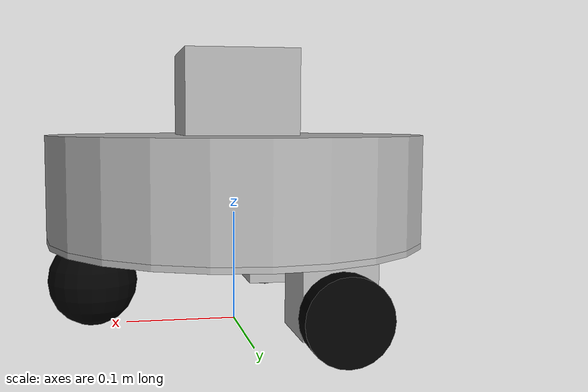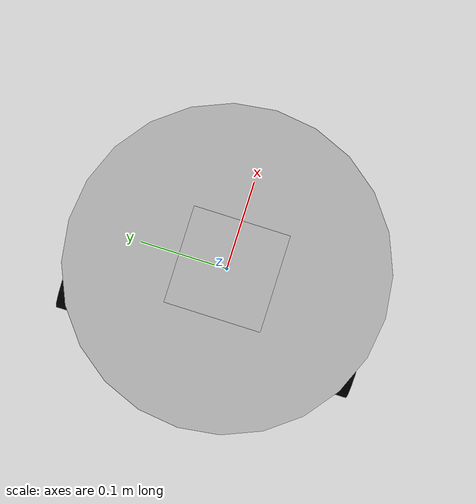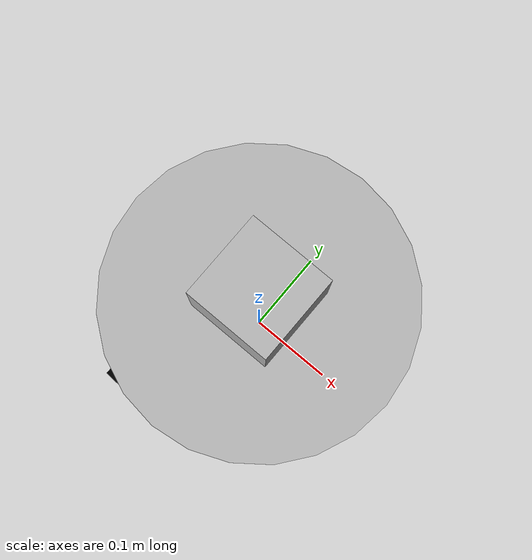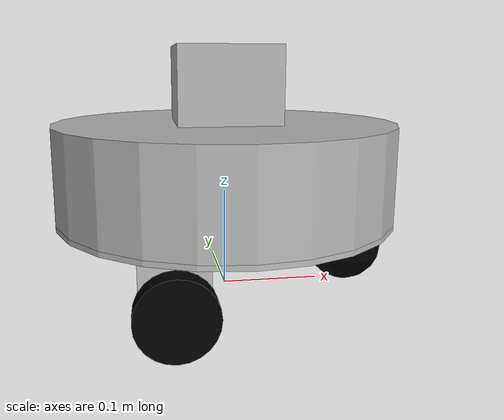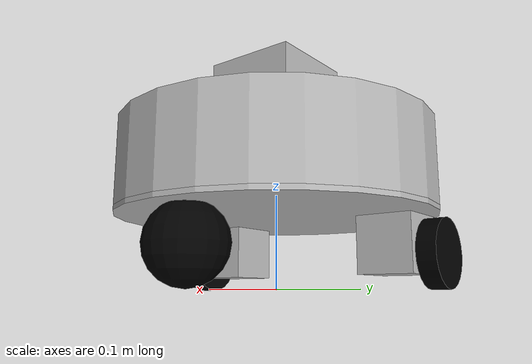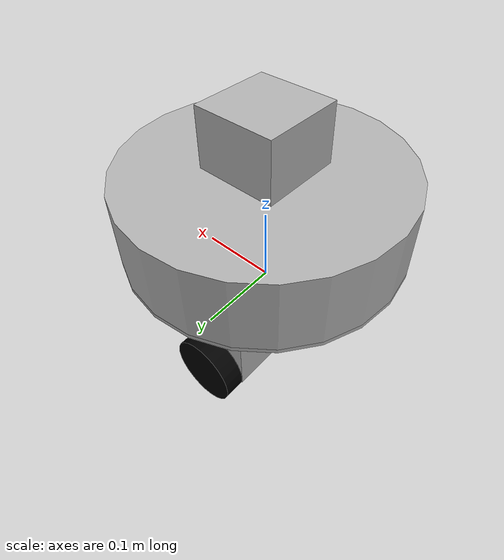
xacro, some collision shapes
<?xml version="1.0"?>
<robot name="model1" xmlns:xacro="http://www.ros.org/wiki/xacro">
 <xacro:include filename="$(find robot_description)/urdf/robot_gazebo.xacro"/>

<link name="base_link">
        <visual>
          <geometry>
            <cylinder length="0.005" radius="0.17"/>
          </geometry>
         <material name="light_grey">
           <color rgba="0.7 0.7 0.7 1.0"/>
         </material>
            <origin rpy="0 0 0" xyz="0 0 0.0775"/>
        </visual>
       <collision>
      <geometry>
       <cylinder length="0.005" radius="0.17"/>
      </geometry>
      <origin  rpy="0 0 0" xyz="0 0 0.0775" />
      </collision>
      <inertial>
       <mass value="2.4"/> <!-- 2.4/2.6 kg for small/big battery pack -->
        <inertia ixx="0.019995" ixy="0.0" ixz="0.0"
                 iyy="0.019995" iyz="0.0"
                 izz="0.03675" />
      </inertial>
     </link>

    <link name="right_mount">
       <visual>
         <geometry>
           <box size="0.06 0.06 0.06"/>
         </geometry>
         <material name="light_grey">
           <color rgba="0.7 0.7 0.7 1.0"/>
         </material>
         <origin rpy="0 0 0" xyz="0.0 0.0 0.0"/>
       </visual>
      <collision>
      <geometry>
      <box size="0.06 0.06 0.06"/>
      </geometry>
      <origin  rpy="0 0 0" xyz="0.0 0.0 0.0" />
      </collision>
      <inertial>
        <mass value="0.010" />
        <origin xyz="0 0 0" />
        <inertia ixx="0.001" ixy="0.0" ixz="0.0"
                 iyy="0.001" iyz="0.0"
                 izz="0.001" />
      </inertial>

     </link>

     <joint name="base_to_right_mount" type="fixed">
       <parent link="base_link"/>
       <child link="right_mount"/>
       <origin xyz="-0.06 -0.110 0.0450"/>
   </joint>

  <link name="left_mount">
       <visual>
         <geometry>
           <box size="0.06 0.06 0.06"/>
         </geometry>
         <material name="light_grey">
           <color rgba="0.7 0.7 0.7 1.0"/>
         </material>
         <origin rpy="0 0 0" xyz="0.0 0.0 0.0"/>
       </visual>
     <collision>
      <geometry>
      <box size="0.06 0.06 0.06"/>
      </geometry>
      <origin  rpy="0 0 0" xyz="0.0 0.0 0.0" />
      </collision>
      <inertial>
        <mass value="0.01" />
        <origin xyz="0 0 0" />
        <inertia ixx="0.001" ixy="0.0" ixz="0.0"
                 iyy="0.001" iyz="0.0"
                 izz="0.001" />
      </inertial>
     </link>

     <joint name="base_to_left_mount" type="fixed">
       <parent link="base_link"/>
       <child link="left_mount"/>
       <origin xyz="-0.06 0.110 0.0450"/>
   </joint>

 <link name="right_wheel">
       <visual>
         <geometry>
           <cylinder length="0.02" radius="0.035"/>
         </geometry>
         <material name="black">
           <color rgba="0 0 0 1.0"/>
         </material>
         <origin rpy="0 1.5707 1.5707 " xyz="0.0 0.0 0.0"/>
       </visual>
 <collision>
      <geometry>
      <cylinder length="0.02" radius="0.035" />
      </geometry>
      <origin  rpy="0 1.5707 1.5707" xyz="0.0 0.0 0.0" />
      </collision>
      <inertial>
        <mass value="0.010" />
        <origin xyz="0 0 0" />
        <inertia ixx="0.001" ixy="0.0" ixz="0.0"
                 iyy="0.001" iyz="0.0"
                 izz="0.001" />
      </inertial>
       </link>

     <joint name="base_to_right_wheel" type="continuous">
       <parent link="right_mount"/>
       <child link="right_wheel"/>
       <axis xyz="0 1 0"/>
       <origin rpy="0 0 0" xyz="0.0 -0.045 -0.01"/>
   </joint>

   <link name="left_wheel">
       <visual>
         <geometry>
           <cylinder length="0.02" radius="0.035"/>
         </geometry>
         <material name="black">
           <color rgba="0 0 0 1"/>
         </material>
         <origin rpy="0 1.5707 1.5707 " xyz="0.0 0.0 0.0"/>
       </visual>
       <collision>
      <geometry>
      <cylinder length="0.02" radius="0.035" />
      </geometry>
      <origin  rpy="0 1.5707 1.5707" xyz="0.0 0.0 0.0" />
      </collision>
      <inertial>
        <mass value="0.010" />
        <origin xyz="0 1 0" />
        <inertia ixx="0.001" ixy="0.0" ixz="0.0"
                 iyy="0.001" iyz="0.0"
                 izz="0.001" />
      </inertial>

     </link>

     <joint name="base_to_left_wheel" type="continuous">
       <parent link="left_mount"/>
       <child link="left_wheel"/>
       <axis xyz="0 1 0"/>
       <origin rpy="0 0 0" xyz="0.0 0.045 -0.01"/>
   </joint>

     <link name="caster_front_link">
     <visual>
      <origin xyz="0 0 0" rpy="1.570796327 0 0" />
      <geometry>
	<sphere radius="0.040" />
      </geometry>
      <material name="black">
          <color rgba="0 0 0 1.0"/>
      </material>
    </visual>
 <collision>
        <geometry>

	<sphere radius="0.040" />

        </geometry>
      <origin xyz="0 0 0" rpy="1.570796327 0 0" />
      </collision>
      <inertial>
        <mass value="0.010" />
        <origin xyz="0 0 0" />
        <inertia ixx="0.001" ixy="0.0" ixz="0.0"
                 iyy="0.001" iyz="0.0"
                 izz="0.001" />
      </inertial>
    </link>

 <joint name="caster_front_joint" type="fixed">
      <parent link="base_link"/>
      <child link="caster_front_link"/>
      <origin xyz="0.13 0 0.040" rpy="-1.570796327 0 0"/>
    </joint>

 <link name="tier_link">
        <visual>
          <geometry>
            <cylinder length="0.0915" radius="0.17"/>
          </geometry>
         <material name="light_grey">
           <color rgba="0.7 0.7 0.7 1.0"/>
         </material>
            <origin rpy="0 0 0" xyz="0 0 0"/>
        </visual>
       <collision>
      <geometry>
       <cylinder length="0.005" radius="0.17"/>
      </geometry>
      <origin  rpy="0 0 0" xyz="0 0 0.0" />
      </collision>
      <inertial>
        <mass value="0.010" />
        <origin xyz="0 0 0" />
        <inertia ixx="0.001" ixy="0.0" ixz="0.0"
                 iyy="0.001" iyz="0.0"
                 izz="0.001" />
      </inertial>
     </link>
<joint name="tier_base_joint" type="fixed">
    <origin xyz="0 0 0.12575" rpy="0 0 0" />
    <parent link="base_link"/>
    <child link="tier_link" />
  </joint>-->

 <!-- Hokuyo Laser -->
  <link name="laser">
    <collision>
      <origin xyz="0 0 0" rpy="0 0 0"/>
      <geometry>
    <box size="0.1 0.1 0.1"/>
      </geometry>
    </collision>

    <visual>
      <origin xyz="0 0 0" rpy="0 0 0"/>
      <geometry>
        <mesh filename="package://robot_description/meshes/hokuyo.dae"/>
      </geometry>
    </visual>

    <inertial>
      <mass value="1e-5" />
      <origin xyz="0 0 0" rpy="0 0 0"/>
      <inertia ixx="1e-6" ixy="0" ixz="0" iyy="1e-6" iyz="0" izz="1e-6" />
    </inertial>
  </link>

<joint name="laser_joint" type="fixed">
    <origin xyz="0 0 0.1965" rpy="0 0 3.14"/>
    <parent link="base_link"/>
    <child link="laser"/>
  </joint>

<link name="imu_link">
     <visual>
     <geometry>
       <box size="0.026 0.015 0.001" />
     </geometry>
       <origin xyz="0 0 0" rpy="0 0 0" />
     </visual>
    <inertial>
      <mass value="0.0001" />
      <origin xyz="0 0 0" />
      <inertia ixx="0.0001" ixy="0.0" ixz="0.0"
          iyy="0.0001" iyz="0.0"
          izz="0.0001" />
    </inertial>
    </link>
  <joint name="base_to_imu_link" type="fixed">
       <parent link="base_link"/>
       <child link="imu_link"/>
       <origin xyz="0.13 -0.03 0.0775"/>
   </joint>

</robot>
